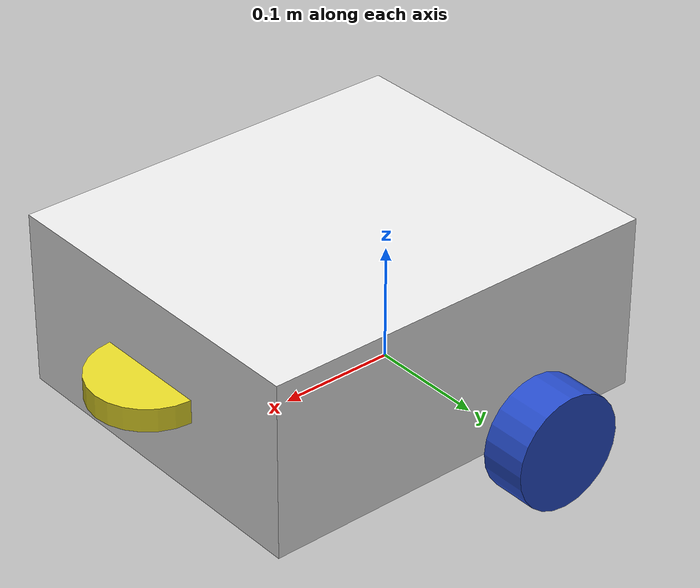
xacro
<?xml version="1.0"?>
<robot xmlns:xacro="http://www.ros.org/wiki/xacro" name="robot">

    <xacro:include filename="inertia_macros.xacro"/>

    <!--Base-->

    <link name="base_link"/>

    <!--Chassis-->

    <joint name="chassis_joint" type="fixed">
        <parent link="base_link"/>
        <child link="chassis"/>
        <origin xyz="-0.1 0 0"/>
    </joint>

    <link name="chassis">
        <visual>
            <origin xyz="0.155 0 0.075"/>
            <geometry>
                <box size="0.35 0.3 0.15"/>
            </geometry>
            <material name="white"/>
        </visual>
        <collision>
            <origin xyz="0.155 0 0.075"/>
            <geometry>
                <box size="0.35 0.3 0.15"/>
            </geometry>
        </collision>
        <xacro:inertial_box mass="0.65" x="0.35" y="0.3" z="0.15">
            <origin xyz="0.155 0 0.075" rpy="0 0 0"/>
        </xacro:inertial_box>
    </link>

    <!--LWheel-->

    <joint name="left_wheel_joint" type="continuous">
        <parent link="base_link"/>
        <child link="left_wheel"/>
        <origin xyz="-0.02 0.17 0" rpy="-${pi/2} 0 0" />
        <axis xyz="0 0 1"/>
    </joint>

    <link name="left_wheel">
        <visual>
            <geometry>
                <cylinder radius="0.05" length="0.04"/>
            </geometry>
            <material name="blue"/>
        </visual>
        <collision>
            <geometry>
                <cylinder radius="0.05" length="0.04"/>
            </geometry>
        </collision>
        <xacro:inertial_cylinder mass="0.1" length="0.04" radius="0.05">
            <origin xyz="0 0 0" rpy="0 0 0"/>
        </xacro:inertial_cylinder>
    </link>

    <!--RWheel-->

    <joint name="right_wheel_joint" type="continuous">
        <parent link="base_link"/>
        <child link="right_wheel"/>
        <origin xyz="-0.02 -0.17 0" rpy="${pi/2} 0 0" />
        <axis xyz="0 0 -1"/>
    </joint>

    <link name="right_wheel">
        <visual>
            <geometry>
                <cylinder radius="0.05" length="0.04"/>
            </geometry>
            <material name="blue"/>
        </visual>
        <collision>
            <geometry>
                <cylinder radius="0.05" length="0.04"/>
            </geometry>
        </collision>
        <xacro:inertial_cylinder mass="0.1" length="0.04" radius="0.05">
            <origin xyz="0 0 0" rpy="0 0 0"/>
        </xacro:inertial_cylinder>
    </link>

    <!--Caster Wheel-->

    <joint name="caster_wheel_joint" type="fixed">
        <parent link="chassis"/>
        <child link="caster_wheel"/>
        <origin xyz="0.25 0 0"/>
    </joint>
    <link name="caster_wheel">
        <visual>
            <geometry>
                <sphere radius="0.05"/>
            </geometry>
            <material name="red"/>
        </visual>
        <collision>
            <geometry>
                <sphere radius="0.05"/>
            </geometry>
        </collision>
        <xacro:inertial_sphere mass="0.25" radius="0.05">
            <origin xyz="0 0 0" rpy="0 0 0"/>
        </xacro:inertial_sphere>
    </link>

    <!--LiDAR-->
    <joint name="lidar_joint" type="fixed">
        <parent link="chassis"/>
        <child link="lidar_frame"/>
        <origin xyz="0.33 0 0.075" rpy="0 0 0"/>
    </joint>
    <link name="lidar_frame">
        <visual>
            <geometry>
                <cylinder radius="0.05" length="0.02"/>
            </geometry>
            <material name="yellow"/>
        </visual>
        <collision>
            <geometry>
                <cylinder radius="0.05" length="0.02"/>
            </geometry>
        </collision>
        <xacro:inertial_cylinder mass="0.1" length="0.02" radius="0.05">
            <origin xyz="0 0 0" rpy="0 0 0"/>
        </xacro:inertial_cylinder>
    </link>

</robot>

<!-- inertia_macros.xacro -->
<robot xmlns:xacro="http://www.ros.org/wiki/xacro" >

    <!--Inertial calculations from https://en.wikipedia.org/wiki/List_of_moments_of_inertia-->

    <xacro:macro name="inertial_sphere" params="mass radius *origin">
        <inertial>
            <xacro:insert_block name="origin"/>
            <mass value="${mass}" />
            <inertia ixx="${(2/5) * mass * (radius*radius)}" ixy="0.0" ixz="0.0"
                    iyy="${(2/5) * mass * (radius*radius)}" iyz="0.0"
                    izz="${(2/5) * mass * (radius*radius)}" />
        </inertial>
    </xacro:macro>

    <xacro:macro name="inertial_box" params="mass x y z *origin">
        <inertial>
            <xacro:insert_block name="origin"/>
            <mass value="${mass}" />
            <inertia ixx="${(1/12) * mass * (y*y+z*z)}" ixy="0.0" ixz="0.0"
                    iyy="${(1/12) * mass * (x*x+z*z)}" iyz="0.0"
                    izz="${(1/12) * mass * (x*x+y*y)}" />
        </inertial>
    </xacro:macro>

    <xacro:macro name="inertial_cylinder" params="mass length radius *origin">
        <inertial>
            <xacro:insert_block name="origin"/>
            <mass value="${mass}" />
            <inertia ixx="${(1/12) * mass * (3*radius*radius + length*length)}" ixy="0.0" ixz="0.0"
                    iyy="${(1/12) * mass * (3*radius*radius + length*length)}" iyz="0.0"
                    izz="${(1/2) * mass * (radius*radius)}" />
        </inertial>
    </xacro:macro>

</robot>
